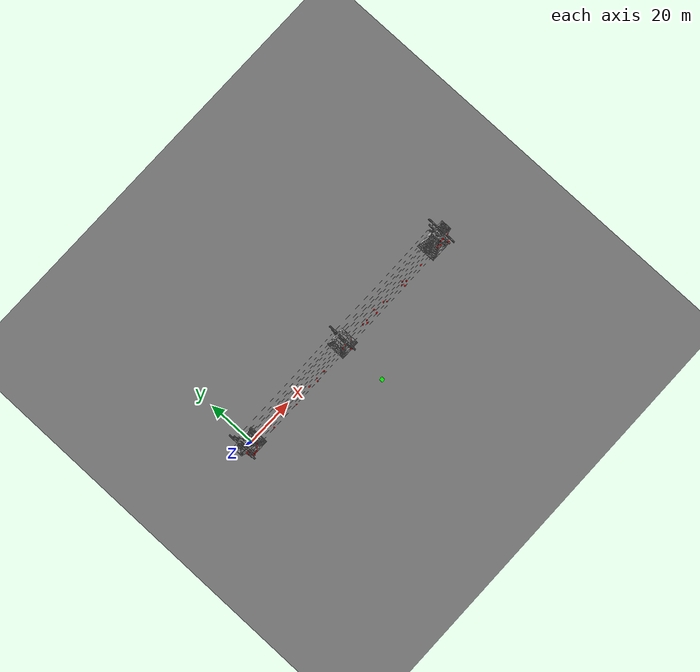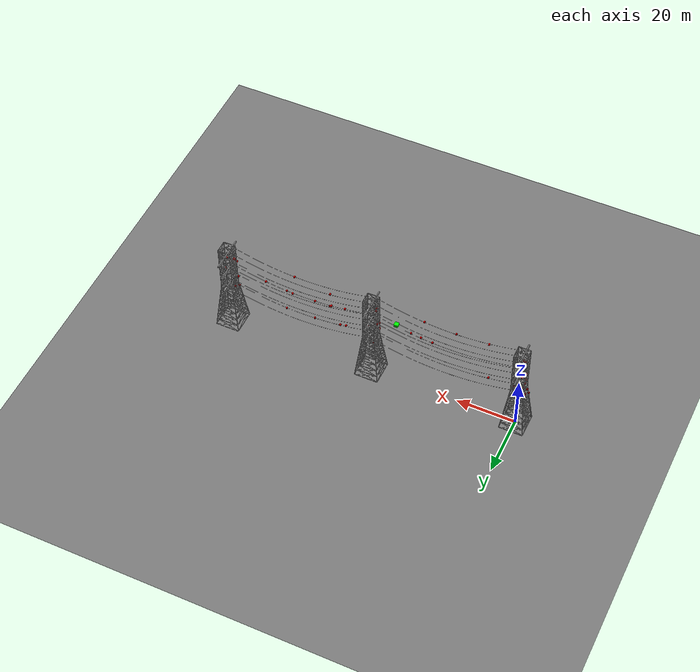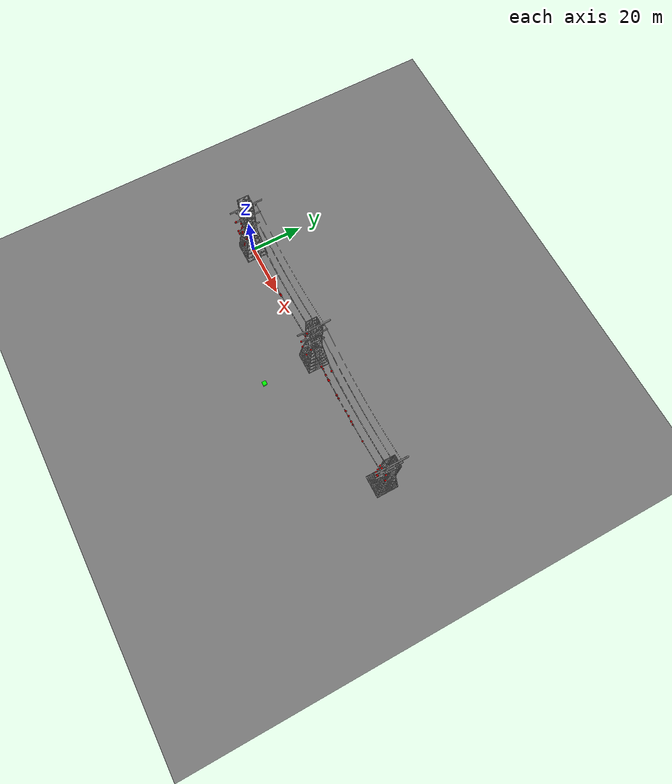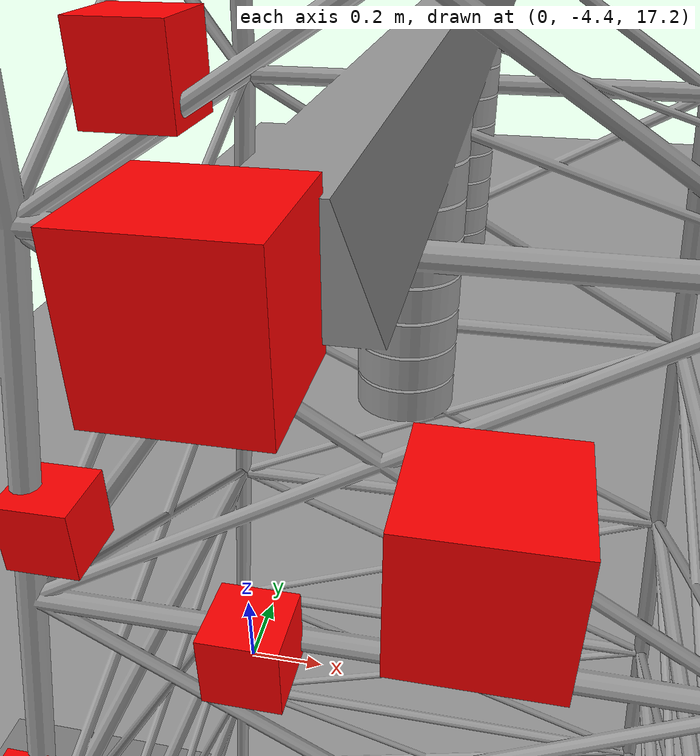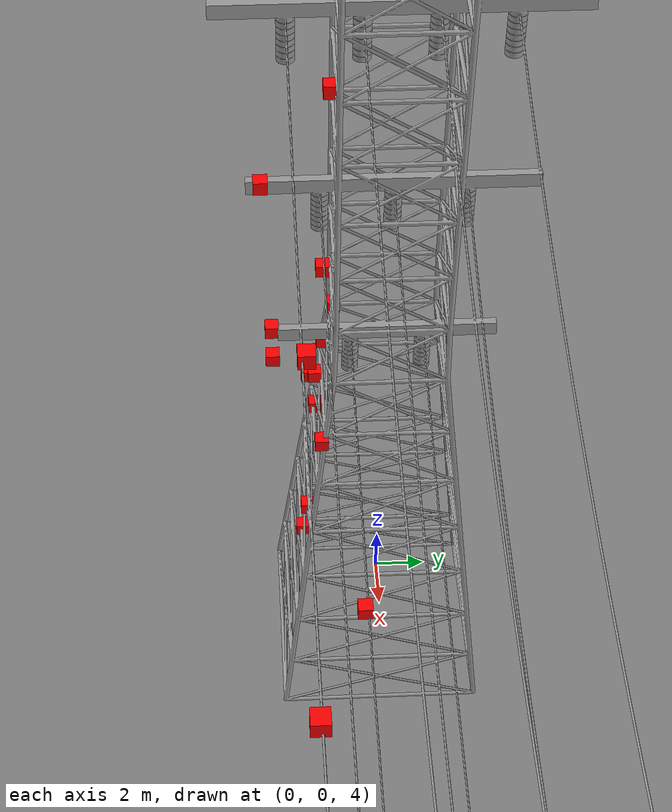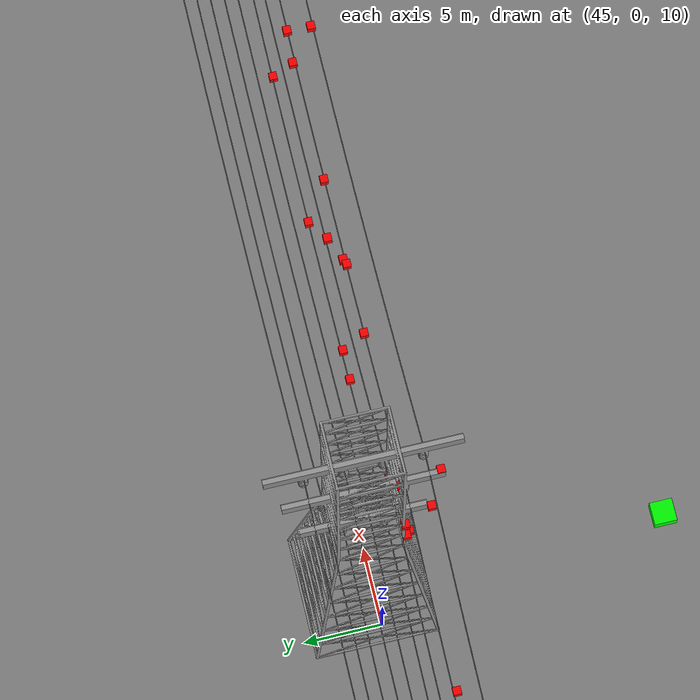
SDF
<?xml version="1.0"?>
<sdf version='1.8'>
  <world name='powerline_50_poi'>
    <!-- Set gravity vector -->
  <gravity>0 0 -9.8</gravity>
    <!-- Basic lighting -->
    <light name='sun' type='directional'>
      <cast_shadows>true</cast_shadows>
      <pose>0 0 10 0 -0 0</pose>
      <diffuse>0.8 0.8 0.8 1</diffuse>
      <specular>0.1 0.1 0.1 1</specular>
      <attenuation>
        <range>1000</range>
        <constant>0.9</constant>
        <linear>0.01</linear>
        <quadratic>0.001</quadratic>
      </attenuation>
      <direction>-0.5 0.5 -1</direction>
    </light>

    <!-- Ground plane -->
    <model name='ground_plane'>
      <static>true</static>
      <link name='link'>
        <collision name='collision'>
          <geometry>
            <plane>
              <normal>0 0 1</normal>
              <size>2000 2000</size>
            </plane>
          </geometry>
          <surface>
            <friction>
              <ode>
                <mu>100</mu>
                <mu2>50</mu2>
              </ode>
            </friction>
          </surface>
        </collision>
        <visual name='visual'>
          <cast_shadows>false</cast_shadows>
          <geometry>
            <plane>
              <normal>0 0 1</normal>
              <size>2000 2000</size>
            </plane>
          </geometry>
          <material>
            <ambient>0.5 0.5 0.5 1</ambient>
            <diffuse>0.5 0.5 0.5 1</diffuse>
            <specular>0.1 0.1 0.1 1</specular>
          </material>
        </visual>
      </link>
    </model>

    <!-- The Powerline model -->
    <model name='powerline'>
      <pose>0 0 0 0 0 0</pose>
      <static>true</static>
      <link name='body'>
        <collision name='collision'>
          <geometry>
            <mesh>
              <uri>model://powerline/powerLine.stl</uri>
              <scale>1 1 1</scale>
            </mesh>
          </geometry>
          <surface>
            <friction>
              <ode>
                <mu>0.8</mu>
                <mu2>0.8</mu2>
              </ode>
            </friction>
          </surface>
        </collision>
        <visual name='visual'>
          <geometry>
            <mesh>
              <uri>model://powerline/powerLine.stl</uri>
            </mesh>
          </geometry>
          <material>
            <ambient>0.6 0.6 0.6 1</ambient>
            <diffuse>0.6 0.6 0.6 1</diffuse>
            <specular>0.1 0.1 0.1 1</specular>
          </material>
        </visual>
      </link>
    </model>

    <!-- GCS Model (Box for now)-->
    <model name='gcs'>
      <pose>50 -20 0 0.0 0.0 0.0</pose>
      <static>true</static>
      <link name='link'>
        <collision name='collision'>
          <geometry>
            <box>
              <size>1.5 1.5 1.5</size>
            </box>
          </geometry>
          <surface>
            <friction>
              <ode>
                <mu>0.8</mu>
                <mu2>0.8</mu2>
              </ode>
            </friction>
          </surface>
        </collision>
        <visual name='visual'>
          <geometry>
            <box>
              <size>1.5 1.5 1.5</size>
            </box>
          </geometry>
          <material>
            <ambient>0.0 1.0 0.0 1.0</ambient>
            <diffuse>0.0 1.0 0.0 1.0</diffuse>
            <specular>0.0 0.2 0.0 1.0</specular>
          </material>
        </visual>
      </link>
    </model>

<!-- Points of Interest (POI) - 50 POIs on powerline structure -->
<!-- Updated poses from Gazebo -->

  <model name="poi_0000">
    <static>true</static>
    <link name="link">
      <visual name="visual">
        <geometry><box><size>0.5 0.5 0.5</size></box></geometry>
        <material>
          <ambient>1 0 0 1</ambient>
          <diffuse>1 0 0 1</diffuse>
          <specular>0.2 0 0 1</specular>
        </material>
      </visual>
    </link>
    <pose>-0.126429 -4.210000 18.204000 0 0 0</pose>
  </model>

  <model name="poi_0001">
    <static>true</static>
    <link name="link">
      <visual name="visual">
        <geometry><box><size>0.5 0.5 0.5</size></box></geometry>
        <material>
          <ambient>1 0 0 1</ambient>
          <diffuse>1 0 0 1</diffuse>
          <specular>0.2 0 0 1</specular>
        </material>
      </visual>
    </link>
    <pose>0.626659 -4.210000 17.509001 0 0 0</pose>
  </model>

  <model name="poi_0002">
    <static>true</static>
    <link name="link">
      <visual name="visual">
        <geometry><box><size>0.5 0.5 0.5</size></box></geometry>
        <material>
          <ambient>1 0 0 1</ambient>
          <diffuse>1 0 0 1</diffuse>
          <specular>0.2 0 0 1</specular>
        </material>
      </visual>
    </link>
    <pose>33.513000 -3.653752 28.513700 0 0 0</pose>
  </model>

  <model name="poi_0003">
    <static>true</static>
    <link name="link">
      <visual name="visual">
        <geometry><box><size>0.5 0.5 0.5</size></box></geometry>
        <material>
          <ambient>1 0 0 1</ambient>
          <diffuse>1 0 0 1</diffuse>
          <specular>0.2 0 0 1</specular>
        </material>
      </visual>
    </link>
    <pose>49.698971 -4.210000 18.448000 0 0 0</pose>
  </model>

  <model name="poi_0004">
    <static>true</static>
    <link name="link">
      <visual name="visual">
        <geometry><box><size>0.5 0.5 0.5</size></box></geometry>
        <material>
          <ambient>1 0 0 1</ambient>
          <diffuse>1 0 0 1</diffuse>
          <specular>0.2 0 0 1</specular>
        </material>
      </visual>
    </link>
    <pose>-1.448050 -2.415231 22.854601 0 0 0</pose>
  </model>

  <model name="poi_0005">
    <static>true</static>
    <link name="link">
      <visual name="visual">
        <geometry><box><size>0.5 0.5 0.5</size></box></geometry>
        <material>
          <ambient>1 0 0 1</ambient>
          <diffuse>1 0 0 1</diffuse>
          <specular>0.2 0 0 1</specular>
        </material>
      </visual>
    </link>
    <pose>48.058689 -2.225640 19.386000 0 0 0</pose>
  </model>

  <model name="poi_0006">
    <static>true</static>
    <link name="link">
      <visual name="visual">
        <geometry><box><size>0.5 0.5 0.5</size></box></geometry>
        <material>
          <ambient>1 0 0 1</ambient>
          <diffuse>1 0 0 1</diffuse>
          <specular>0.2 0 0 1</specular>
        </material>
      </visual>
    </link>
    <pose>0.062645 -4.499510 25.218700 0 0 0</pose>
  </model>

  <model name="poi_0007">
    <static>true</static>
    <link name="link">
      <visual name="visual">
        <geometry><box><size>0.5 0.5 0.5</size></box></geometry>
        <material>
          <ambient>1 0 0 1</ambient>
          <diffuse>1 0 0 1</diffuse>
          <specular>0.2 0 0 1</specular>
        </material>
      </visual>
    </link>
    <pose>99.839699 -4.210000 25.159307 0 0 0</pose>
  </model>

  <model name="poi_0008">
    <static>true</static>
    <link name="link">
      <visual name="visual">
        <geometry><box><size>0.5 0.5 0.5</size></box></geometry>
        <material>
          <ambient>1 0 0 1</ambient>
          <diffuse>1 0 0 1</diffuse>
          <specular>0.2 0 0 1</specular>
        </material>
      </visual>
    </link>
    <pose>61.383499 -1.437850 15.267535 0 0 0</pose>
  </model>

  <model name="poi_0009">
    <static>true</static>
    <link name="link">
      <visual name="visual">
        <geometry><box><size>0.5 0.5 0.5</size></box></geometry>
        <material>
          <ambient>1 0 0 1</ambient>
          <diffuse>1 0 0 1</diffuse>
          <specular>0.2 0 0 1</specular>
        </material>
      </visual>
    </link>
    <pose>37.509998 -2.718280 21.936501 0 0 0</pose>
  </model>

  <model name="poi_0010">
    <static>true</static>
    <link name="link">
      <visual name="visual">
        <geometry><box><size>0.5 0.5 0.5</size></box></geometry>
        <material>
          <ambient>1 0 0 1</ambient>
          <diffuse>1 0 0 1</diffuse>
          <specular>0.2 0 0 1</specular>
        </material>
      </visual>
    </link>
    <pose>97.896767 -2.545530 15.391000 0 0 0</pose>
  </model>

  <model name="poi_0011">
    <static>true</static>
    <link name="link">
      <visual name="visual">
        <geometry><box><size>0.5 0.5 0.5</size></box></geometry>
        <material>
          <ambient>1 0 0 1</ambient>
          <diffuse>1 0 0 1</diffuse>
          <specular>0.2 0 0 1</specular>
        </material>
      </visual>
    </link>
    <pose>-2.090510 -2.236480 15.625059 0 0 0</pose>
  </model>

  <model name="poi_0012">
    <static>true</static>
    <link name="link">
      <visual name="visual">
        <geometry><box><size>0.5 0.5 0.5</size></box></geometry>
        <material>
          <ambient>1 0 0 1</ambient>
          <diffuse>1 0 0 1</diffuse>
          <specular>0.2 0 0 1</specular>
        </material>
      </visual>
    </link>
    <pose>50.103401 -4.778640 25.272938 0 0 0</pose>
  </model>

  <model name="poi_0013">
    <static>true</static>
    <link name="link">
      <visual name="visual">
        <geometry><box><size>0.5 0.5 0.5</size></box></geometry>
        <material>
          <ambient>1 0 0 1</ambient>
          <diffuse>1 0 0 1</diffuse>
          <specular>0.2 0 0 1</specular>
        </material>
      </visual>
    </link>
    <pose>98.988899 -2.227382 27.694099 0 0 0</pose>
  </model>

  <model name="poi_0014">
    <static>true</static>
    <link name="link">
      <visual name="visual">
        <geometry><box><size>0.5 0.5 0.5</size></box></geometry>
        <material>
          <ambient>1 0 0 1</ambient>
          <diffuse>1 0 0 1</diffuse>
          <specular>0.2 0 0 1</specular>
        </material>
      </visual>
    </link>
    <pose>-1.565260 -2.292764 19.837000 0 0 0</pose>
  </model>

  <model name="poi_0015">
    <static>true</static>
    <link name="link">
      <visual name="visual">
        <geometry><box><size>0.5 0.5 0.5</size></box></geometry>
        <material>
          <ambient>1 0 0 1</ambient>
          <diffuse>1 0 0 1</diffuse>
          <specular>0.2 0 0 1</specular>
        </material>
      </visual>
    </link>
    <pose>99.987846 -4.210000 25.676001 0 0 0</pose>
  </model>

  <model name="poi_0016">
    <static>true</static>
    <link name="link">
      <visual name="visual">
        <geometry><box><size>0.5 0.5 0.5</size></box></geometry>
        <material>
          <ambient>1 0 0 1</ambient>
          <diffuse>1 0 0 1</diffuse>
          <specular>0.2 0 0 1</specular>
        </material>
      </visual>
    </link>
    <pose>80.596001 -2.488580 21.189503 0 0 0</pose>
  </model>

  <model name="poi_0017">
    <static>true</static>
    <link name="link">
      <visual name="visual">
        <geometry><box><size>0.5 0.5 0.5</size></box></geometry>
        <material>
          <ambient>1 0 0 1</ambient>
          <diffuse>1 0 0 1</diffuse>
          <specular>0.2 0 0 1</specular>
        </material>
      </visual>
    </link>
    <pose>64.595001 -1.315810 28.772469 0 0 0</pose>
  </model>

  <model name="poi_0018">
    <static>true</static>
    <link name="link">
      <visual name="visual">
        <geometry><box><size>0.5 0.5 0.5</size></box></geometry>
        <material>
          <ambient>1 0 0 1</ambient>
          <diffuse>1 0 0 1</diffuse>
          <specular>0.2 0 0 1</specular>
        </material>
      </visual>
    </link>
    <pose>70.327003 -1.342427 14.197300 0 0 0</pose>
  </model>

  <model name="poi_0019">
    <static>true</static>
    <link name="link">
      <visual name="visual">
        <geometry><box><size>0.5 0.5 0.5</size></box></geometry>
        <material>
          <ambient>1 0 0 1</ambient>
          <diffuse>1 0 0 1</diffuse>
          <specular>0.2 0 0 1</specular>
        </material>
      </visual>
    </link>
    <pose>60.130001 -2.476576 22.516800 0 0 0</pose>
  </model>

  <model name="poi_0020">
    <static>true</static>
    <link name="link">
      <visual name="visual">
        <geometry><box><size>0.5 0.5 0.5</size></box></geometry>
        <material>
          <ambient>1 0 0 1</ambient>
          <diffuse>1 0 0 1</diffuse>
          <specular>0.2 0 0 1</specular>
        </material>
      </visual>
    </link>
    <pose>64.871002 -2.536393 21.665501 0 0 0</pose>
  </model>

  <model name="poi_0021">
    <static>true</static>
    <link name="link">
      <visual name="visual">
        <geometry><box><size>0.5 0.5 0.5</size></box></geometry>
        <material>
          <ambient>1 0 0 1</ambient>
          <diffuse>1 0 0 1</diffuse>
          <specular>0.2 0 0 1</specular>
        </material>
      </visual>
    </link>
    <pose>65.246002 -2.403909 21.568899 0 0 0</pose>
  </model>

  <model name="poi_0022">
    <static>true</static>
    <link name="link">
      <visual name="visual">
        <geometry><box><size>0.5 0.5 0.5</size></box></geometry>
        <material>
          <ambient>1 0 0 1</ambient>
          <diffuse>1 0 0 1</diffuse>
          <specular>0.2 0 0 1</specular>
        </material>
      </visual>
    </link>
    <pose>0.556849 -3.125220 7.475533 0 0 0</pose>
  </model>

  <model name="poi_0023">
    <static>true</static>
    <link name="link">
      <visual name="visual">
        <geometry><box><size>0.5 0.5 0.5</size></box></geometry>
        <material>
          <ambient>1 0 0 1</ambient>
          <diffuse>1 0 0 1</diffuse>
          <specular>0.2 0 0 1</specular>
        </material>
      </visual>
    </link>
    <pose>97.984001 -2.228320 27.386982 0 0 0</pose>
  </model>

  <model name="poi_0024">
    <static>true</static>
    <link name="link">
      <visual name="visual">
        <geometry><box><size>0.5 0.5 0.5</size></box></geometry>
        <material>
          <ambient>1 0 0 1</ambient>
          <diffuse>1 0 0 1</diffuse>
          <specular>0.2 0 0 1</specular>
        </material>
      </visual>
    </link>
    <pose>88.021004 -2.518898 22.119301 0 0 0</pose>
  </model>

  <model name="poi_0025">
    <static>true</static>
    <link name="link">
      <visual name="visual">
        <geometry><box><size>0.5 0.5 0.5</size></box></geometry>
        <material>
          <ambient>1 0 0 1</ambient>
          <diffuse>1 0 0 1</diffuse>
          <specular>0.2 0 0 1</specular>
        </material>
      </visual>
    </link>
    <pose>-2.487610 -2.800212 13.311200 0 0 0</pose>
  </model>

  <model name="poi_0026">
    <static>true</static>
    <link name="link">
      <visual name="visual">
        <geometry><box><size>0.5 0.5 0.5</size></box></geometry>
        <material>
          <ambient>1 0 0 1</ambient>
          <diffuse>1 0 0 1</diffuse>
          <specular>0.2 0 0 1</specular>
        </material>
      </visual>
    </link>
    <pose>11.840900 -3.480790 29.049107 0 0 0</pose>
  </model>

  <model name="poi_0027">
    <static>true</static>
    <link name="link">
      <visual name="visual">
        <geometry><box><size>0.5 0.5 0.5</size></box></geometry>
        <material>
          <ambient>1 0 0 1</ambient>
          <diffuse>1 0 0 1</diffuse>
          <specular>0.2 0 0 1</specular>
        </material>
      </visual>
    </link>
    <pose>-0.107072 -2.156017 28.986000 0 0 0</pose>
  </model>

  <model name="poi_0028">
    <static>true</static>
    <link name="link">
      <visual name="visual">
        <geometry><box><size>0.5 0.5 0.5</size></box></geometry>
        <material>
          <ambient>1 0 0 1</ambient>
          <diffuse>1 0 0 1</diffuse>
          <specular>0.2 0 0 1</specular>
        </material>
      </visual>
    </link>
    <pose>99.438301 -2.646102 14.104000 0 0 0</pose>
  </model>

  <model name="poi_0029">
    <static>true</static>
    <link name="link">
      <visual name="visual">
        <geometry><box><size>0.5 0.5 0.5</size></box></geometry>
        <material>
          <ambient>1 0 0 1</ambient>
          <diffuse>1 0 0 1</diffuse>
          <specular>0.2 0 0 1</specular>
        </material>
      </visual>
    </link>
    <pose>2.384049 -2.488030 14.733000 0 0 0</pose>
  </model>

  <model name="poi_0030">
    <static>true</static>
    <link name="link">
      <visual name="visual">
        <geometry><box><size>0.5 0.5 0.5</size></box></geometry>
        <material>
          <ambient>1 0 0 1</ambient>
          <diffuse>1 0 0 1</diffuse>
          <specular>0.2 0 0 1</specular>
        </material>
      </visual>
    </link>
    <pose>49.170502 -2.097523 27.449200 0 0 0</pose>
  </model>

  <model name="poi_0031">
    <static>true</static>
    <link name="link">
      <visual name="visual">
        <geometry><box><size>0.5 0.5 0.5</size></box></geometry>
        <material>
          <ambient>1 0 0 1</ambient>
          <diffuse>1 0 0 1</diffuse>
          <specular>0.2 0 0 1</specular>
        </material>
      </visual>
    </link>
    <pose>-0.700111 -2.612900 15.166097 0 0 0</pose>
  </model>

  <model name="poi_0032">
    <static>true</static>
    <link name="link">
      <visual name="visual">
        <geometry><box><size>0.5 0.5 0.5</size></box></geometry>
        <material>
          <ambient>1 0 0 1</ambient>
          <diffuse>1 0 0 1</diffuse>
          <specular>0.2 0 0 1</specular>
        </material>
      </visual>
    </link>
    <pose>50.416901 -3.064050 10.220000 0 0 0</pose>
  </model>

  <model name="poi_0033">
    <static>true</static>
    <link name="link">
      <visual name="visual">
        <geometry><box><size>0.5 0.5 0.5</size></box></geometry>
        <material>
          <ambient>1 0 0 1</ambient>
          <diffuse>1 0 0 1</diffuse>
          <specular>0.2 0 0 1</specular>
        </material>
      </visual>
    </link>
    <pose>1.020890 -2.953538 9.389350 0 0 0</pose>
  </model>

  <model name="poi_0034">
    <static>true</static>
    <link name="link">
      <visual name="visual">
        <geometry><box><size>0.5 0.5 0.5</size></box></geometry>
        <material>
          <ambient>1 0 0 1</ambient>
          <diffuse>1 0 0 1</diffuse>
          <specular>0.2 0 0 1</specular>
        </material>
      </visual>
    </link>
    <pose>22.711500 -3.649047 28.158899 0 0 0</pose>
  </model>

  <model name="poi_0035">
    <static>true</static>
    <link name="link">
      <visual name="visual">
        <geometry><box><size>0.5 0.5 0.5</size></box></geometry>
        <material>
          <ambient>1 0 0 1</ambient>
          <diffuse>1 0 0 1</diffuse>
          <specular>0.2 0 0 1</specular>
        </material>
      </visual>
    </link>
    <pose>101.358002 -2.101750 27.637350 0 0 0</pose>
  </model>

  <model name="poi_0036">
    <static>true</static>
    <link name="link">
      <visual name="visual">
        <geometry><box><size>0.5 0.5 0.5</size></box></geometry>
        <material>
          <ambient>1 0 0 1</ambient>
          <diffuse>1 0 0 1</diffuse>
          <specular>0.2 0 0 1</specular>
        </material>
      </visual>
    </link>
    <pose>97.915604 -2.213969 20.070999 0 0 0</pose>
  </model>

  <model name="poi_0037">
    <static>true</static>
    <link name="link">
      <visual name="visual">
        <geometry><box><size>0.5 0.5 0.5</size></box></geometry>
        <material>
          <ambient>1 0 0 1</ambient>
          <diffuse>1 0 0 1</diffuse>
          <specular>0.2 0 0 1</specular>
        </material>
      </visual>
    </link>
    <pose>30.138700 -2.592337 21.230200 0 0 0</pose>
  </model>

  <model name="poi_0038">
    <static>true</static>
    <link name="link">
      <visual name="visual">
        <geometry><box><size>0.5 0.5 0.5</size></box></geometry>
        <material>
          <ambient>1 0 0 1</ambient>
          <diffuse>1 0 0 1</diffuse>
          <specular>0.2 0 0 1</specular>
        </material>
      </visual>
    </link>
    <pose>80.329002 -1.391940 14.003633 0 0 0</pose>
  </model>

  <model name="poi_0039">
    <static>true</static>
    <link name="link">
      <visual name="visual">
        <geometry><box><size>0.5 0.5 0.5</size></box></geometry>
        <material>
          <ambient>1 0 0 1</ambient>
          <diffuse>1 0 0 1</diffuse>
          <specular>0.2 0 0 1</specular>
        </material>
      </visual>
    </link>
    <pose>34.054798 -2.540300 21.706400 0 0 0</pose>
  </model>

  <model name="poi_0040">
    <static>true</static>
    <link name="link">
      <visual name="visual">
        <geometry><box><size>0.5 0.5 0.5</size></box></geometry>
        <material>
          <ambient>1 0 0 1</ambient>
          <diffuse>1 0 0 1</diffuse>
          <specular>0.2 0 0 1</specular>
        </material>
      </visual>
    </link>
    <pose>59.286999 -1.382883 15.906200 0 0 0</pose>
  </model>

  <model name="poi_0041">
    <static>true</static>
    <link name="link">
      <visual name="visual">
        <geometry><box><size>0.5 0.5 0.5</size></box></geometry>
        <material>
          <ambient>1 0 0 1</ambient>
          <diffuse>1 0 0 1</diffuse>
          <specular>0.2 0 0 1</specular>
        </material>
      </visual>
    </link>
    <pose>52.091702 -2.134633 18.629999 0 0 0</pose>
  </model>

  <model name="poi_0042">
    <static>true</static>
    <link name="link">
      <visual name="visual">
        <geometry><box><size>0.5 0.5 0.5</size></box></geometry>
        <material>
          <ambient>1 0 0 1</ambient>
          <diffuse>1 0 0 1</diffuse>
          <specular>0.2 0 0 1</specular>
        </material>
      </visual>
    </link>
    <pose>78.044998 -3.489130 28.195288 0 0 0</pose>
  </model>

  <model name="poi_0043">
    <static>true</static>
    <link name="link">
      <visual name="visual">
        <geometry><box><size>0.5 0.5 0.5</size></box></geometry>
        <material>
          <ambient>1 0 0 1</ambient>
          <diffuse>1 0 0 1</diffuse>
          <specular>0.2 0 0 1</specular>
        </material>
      </visual>
    </link>
    <pose>70.626999 -2.470559 21.157801 0 0 0</pose>
  </model>

  <model name="poi_0044">
    <static>true</static>
    <link name="link">
      <visual name="visual">
        <geometry><box><size>0.5 0.5 0.5</size></box></geometry>
        <material>
          <ambient>1 0 0 1</ambient>
          <diffuse>1 0 0 1</diffuse>
          <specular>0.2 0 0 1</specular>
        </material>
      </visual>
    </link>
    <pose>-1.254880 -1.914266 18.284000 0 0 0</pose>
  </model>

  <model name="poi_0045">
    <static>true</static>
    <link name="link">
      <visual name="visual">
        <geometry><box><size>0.5 0.5 0.5</size></box></geometry>
        <material>
          <ambient>1 0 0 1</ambient>
          <diffuse>1 0 0 1</diffuse>
          <specular>0.2 0 0 1</specular>
        </material>
      </visual>
    </link>
    <pose>48.046902 -2.131507 22.185301 0 0 0</pose>
  </model>

  <model name="poi_0046">
    <static>true</static>
    <link name="link">
      <visual name="visual">
        <geometry><box><size>0.5 0.5 0.5</size></box></geometry>
        <material>
          <ambient>1 0 0 1</ambient>
          <diffuse>1 0 0 1</diffuse>
          <specular>0.2 0 0 1</specular>
        </material>
      </visual>
    </link>
    <pose>78.495903 -2.352863 21.081100 0 0 0</pose>
  </model>

  <model name="poi_0047">
    <static>true</static>
    <link name="link">
      <visual name="visual">
        <geometry><box><size>0.5 0.5 0.5</size></box></geometry>
        <material>
          <ambient>1 0 0 1</ambient>
          <diffuse>1 0 0 1</diffuse>
          <specular>0.2 0 0 1</specular>
        </material>
      </visual>
    </link>
    <pose>10.551900 -1.454790 15.513500 0 0 0</pose>
  </model>

  <model name="poi_0048">
    <static>true</static>
    <link name="link">
      <visual name="visual">
        <geometry><box><size>0.5 0.5 0.5</size></box></geometry>
        <material>
          <ambient>1 0 0 1</ambient>
          <diffuse>1 0 0 1</diffuse>
          <specular>0.2 0 0 1</specular>
        </material>
      </visual>
    </link>
    <pose>102.166000 -2.230981 22.152000 0 0 0</pose>
  </model>

  <model name="poi_0049">
    <static>true</static>
    <link name="link">
      <visual name="visual">
        <geometry><box><size>0.5 0.5 0.5</size></box></geometry>
        <material>
          <ambient>1 0 0 1</ambient>
          <diffuse>1 0 0 1</diffuse>
          <specular>0.2 0 0 1</specular>
        </material>
      </visual>
    </link>
    <pose>-1.616120 -2.533386 12.445800 0 0 0</pose>
  </model>

    <!-- Physics -->
    <physics name='default_physics' default='true' type='ode'>
      <max_step_size>0.002</max_step_size>
      <real_time_factor>1.0</real_time_factor>
      <real_time_update_rate>500</real_time_update_rate>
    </physics>

    <!-- Scene settings -->
    <scene>
      <ambient>0.4 0.4 0.4 1</ambient>
      <background>0.7 0.7 0.7 1</background>
      <shadows>true</shadows>
    </scene>

    <!-- Spherical coordinates -->
    <spherical_coordinates>
      <surface_model>EARTH_WGS84</surface_model>
      <latitude_deg>0</latitude_deg>
      <longitude_deg>0</longitude_deg>
      <elevation>0</elevation>
      <heading_deg>0</heading_deg>
    </spherical_coordinates>
  </world>
</sdf>
